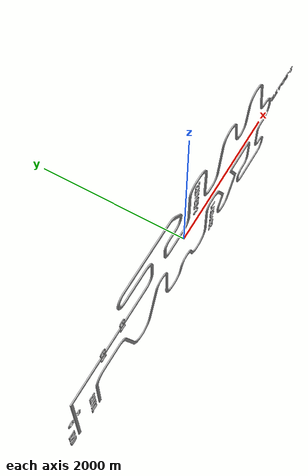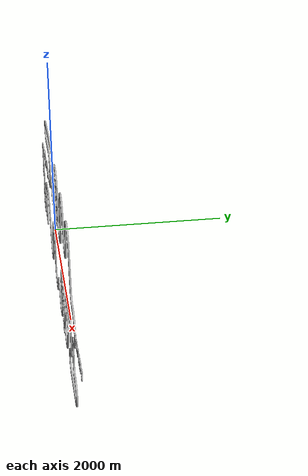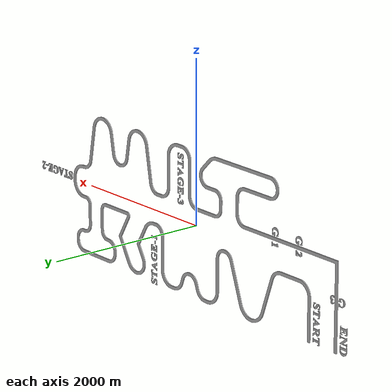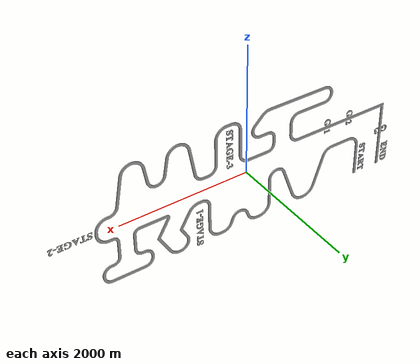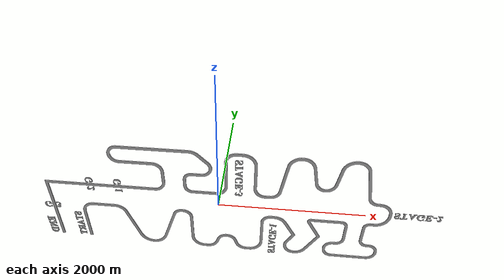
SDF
<?xml version="1.0" encoding="UTF-8"?>
<sdf version="1.4">
    <world name="flw">
        <plugin name="gazebo_ros_state" filename="libgazebo_ros_state.so">
          <update_rate>10.0</update_rate>
        </plugin>
        <physics type="ode">
            <real_time_update_rate>1000.0</real_time_update_rate>
            <max_step_size>0.001</max_step_size>
            <real_time_factor>1</real_time_factor>
            <ode>
                <solver>
                    <type>quick</type>
                    <iters>100</iters>
                    <precon_iters>0</precon_iters>
                    <sor>1.400000</sor>
                    <use_dynamic_moi_rescaling>1</use_dynamic_moi_rescaling>
                </solver>
                <constraints>
                    <cfm>0.00001</cfm>
                    <erp>0.2</erp>
                    <contact_max_correcting_vel>2000.000000</contact_max_correcting_vel>
                    <contact_surface_layer>0.01000</contact_surface_layer>
                </constraints>
            </ode>
        </physics>
        <scene>
            <ambient>0.0 0.0 0.0 1.0</ambient>
            <shadows>1</shadows>
        </scene>

        <include>
            <uri>model://sun</uri>
        </include>
        <gui>
            <camera name="my_camera">
                <pose>-3.2 7.8 31 0 1.5707963 1.5707963</pose>
            </camera>
        </gui>
        <model name="arena_model">
            <pose>0 0 0  0 0 0</pose>
            <static>true</static>
            <link name="arena_link">
                <visual name="visual">
                <geometry>
                    <!-- Relative path defined in package.xml -->
                    <mesh><uri>model://arena/arena.dae</uri></mesh>
                </geometry>
                </visual>
                <collision name="collision">
                    <geometry>
                        <!-- Relative path defined in package.xml -->
                        <mesh><uri>model://arena/arena.dae</uri></mesh>
                    </geometry>
                    <surface>
                        <friction>
                            <ode>
                                <mu>100</mu>
                                <mu2>50</mu2>
                            </ode>
                        </friction>
                    </surface>
                </collision>
            </link>
        </model>
    </world>
</sdf>
